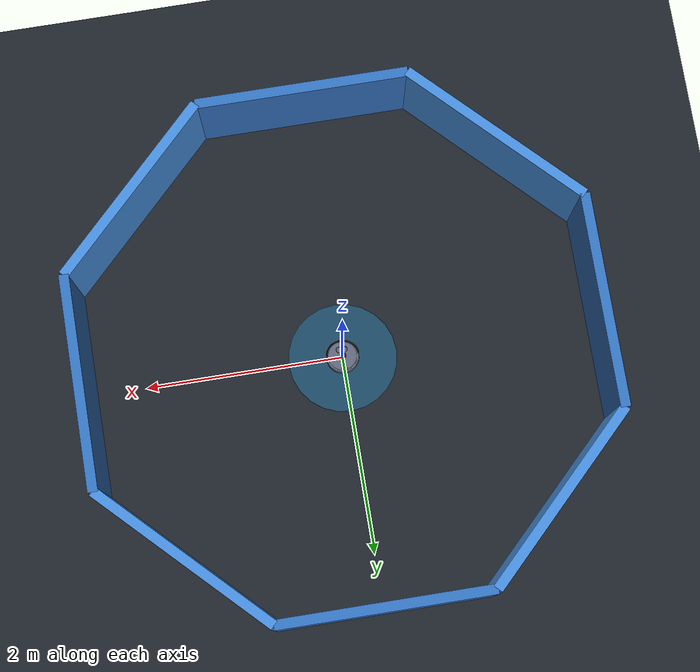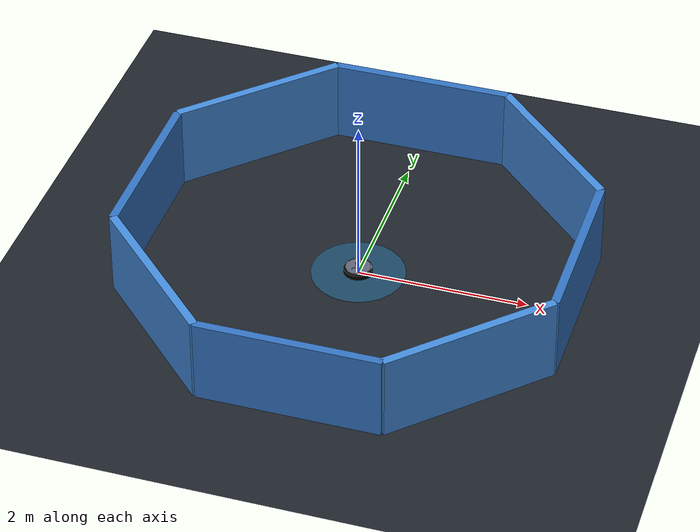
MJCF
<mujoco model="turtlebot4_octagon">

    <compiler angle="radian"/>
    <option gravity="0 0 -9.81"/>

    <!--
        turtlebot4.xml의 최상위 로봇 body가 pos="0 0 ..."이면
        TurtleBot4가 옥타곤 정중앙에서 시작합니다.
    -->
    <include file="turtlebot4.xml"/>

    <worldbody>

        <!-- 8 m x 8 m floor -->
        <geom name="floor"
              type="plane"
              size="4 4 0.1"
              rgba="0.12 0.14 0.17 1"
              friction="1.0 0.005 0.0001"/>

        <!-- Center marker: visual only, no collision -->
        <geom name="start_marker"
              type="cylinder"
              pos="0 0 0.006"
              size="0.55 0.005"
              rgba="0.12 0.65 0.95 0.30"
              contype="0"
              conaffinity="0"/>

        <!-- Horizontal walls -->
        <geom name="wall_north" type="box"
              pos="0 2.55 0.5" size="1.06 0.05 0.5"
              rgba="0.20 0.45 0.75 1"/>
        <geom name="wall_south" type="box"
              pos="0 -2.55 0.5" size="1.06 0.05 0.5"
              rgba="0.20 0.45 0.75 1"/>

        <!-- Vertical walls -->
        <geom name="wall_east" type="box"
              pos="2.55 0 0.5" size="0.05 1.06 0.5"
              rgba="0.20 0.45 0.75 1"/>
        <geom name="wall_west" type="box"
              pos="-2.55 0 0.5" size="0.05 1.06 0.5"
              rgba="0.20 0.45 0.75 1"/>

        <!-- 45-degree diagonal walls -->
        <geom name="wall_north_east" type="box"
              pos="1.803 1.803 0.5" size="1.06 0.05 0.5"
              euler="0 0 -0.7853981634"
              rgba="0.27 0.55 0.86 1"/>
        <geom name="wall_south_east" type="box"
              pos="1.803 -1.803 0.5" size="1.06 0.05 0.5"
              euler="0 0 0.7853981634"
              rgba="0.27 0.55 0.86 1"/>
        <geom name="wall_south_west" type="box"
              pos="-1.803 -1.803 0.5" size="1.06 0.05 0.5"
              euler="0 0 -0.7853981634"
              rgba="0.27 0.55 0.86 1"/>
        <geom name="wall_north_west" type="box"
              pos="-1.803 1.803 0.5" size="1.06 0.05 0.5"
              euler="0 0 0.7853981634"
              rgba="0.27 0.55 0.86 1"/>

    </worldbody>

</mujoco>

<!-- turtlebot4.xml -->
<mujoco model="turtlebot4">
  <compiler angle="radian" coordinate="local" meshdir="./assets/meshes" autolimits="true"/>
  <size nstack="300000" nuser_geom="1"/>
  <option gravity="0 0 -9.81" timestep="0.002"/>

  <asset>
    <material name="metal" rgba=".9 .95 .95 1"/>
    <material name="black" rgba="0 0 0 1"/>
    <material name="white" rgba="1 1 1 1"/>
    <material name="gray" rgba="0.371705 0.392426 0.474270 1"/>
    <mesh file="body_visual_processed.stl" scale="0.1 0.1 0.1"/>
    <mesh file="bumper_visual.obj" scale="0.001 0.001 0.001"/>
    <mesh file="top_reduced.stl" scale="0.001 0.001 0.001"/>
    <mesh file="weight_block.stl" scale="0.001 0.001 0.001"/>
    <mesh file="wheel.stl" scale="0.001 0.001 0.001"/>
  </asset>

  <worldbody>
    <body name="base" pos="0 0 0.0392">
      <freejoint name="floating_base_joint"/>

      <!-- Robot geoms use group 1. The custom LiDAR ray caster includes
           group 0 only, preventing self-detection without changing collision. -->
      <geom type="mesh" mesh="body_visual_processed" material="gray" mass="0.269" group="1"/>

      <site name="base_frame" pos="0 0 0" quat="1 0 0 0" size="0.003"/>
      <site name="imu" pos="0.051 -0.035 0.0293"
            quat="1 0 0 0" size="0.003"/>

      <body name="bumper" pos="0 0 0" axisangle="0 0 1 4.71239">
        <geom type="mesh" mesh="bumper_visual" material="black" mass="0.1" group="1"/>
      </body>

      <body name="wheel_l" pos="0.11755 0.002 -0.0032">
        <geom type="mesh" mesh="wheel" group="1"/>
        <joint name="left" damping=".03" actuatorfrcrange="-.4 .4"
               pos="0 0 0" axis="1 0 0"/>
      </body>

      <body name="wheel_r" pos="-0.117 0.002 -0.0032">
        <geom type="mesh" mesh="wheel" group="1"/>
        <joint name="right" damping=".03" actuatorfrcrange="-.4 .4"
               pos="0 0 0" axis="1 0 0"/>
      </body>

      <body name="wheel_f" pos="0 -0.125 -0.026">
        <geom type="sphere" size="0.013 0.013" group="1"/>
        <joint type="ball"/>
      </body>

      <!-- Fixed 2D LiDAR frame. A complete 360-degree scan is generated
           by t2DLiDARSensor with mj_multiRay at one simulation timestamp. -->
      <body name="lidar" pos="0 0 0.08">
        <geom name="lidar_head_geom" type="cylinder" size="0.035 0.015"
              rgba="0.1 0.1 0.1 1" mass="0.01" group="1"/>
        <site name="laser_site" pos="0 0 0" quat="1 0 0 0"
              size="0.003" rgba="0 1 0 0.5"/>
      </body>
    </body>
  </worldbody>

  <tendon>
    <fixed name="forward">
      <joint joint="left" coef=".83"/>
      <joint joint="right" coef=".83"/>
    </fixed>
    <fixed name="turn">
      <joint joint="left" coef="-.1"/>
      <joint joint="right" coef=".1"/>
    </fixed>
  </tendon>

  <actuator>
    <motor name="forward" tendon="forward" ctrlrange="-0.5 0.5"/>
    <motor name="turn" tendon="turn" ctrlrange="-2 2"/>
  </actuator>

  <sensor>
    <!-- IMU -->
    <framequat name="imu_quat" objtype="site" objname="imu"/>
    <gyro name="imu_ang" site="imu"/>
    <accelerometer name="imu_acc" site="imu"/>

    <!-- Base pose and velocity for odometry. DSS keeps MuJoCo coordinates;
         dss_ros2_bridge converts them to ROS REP-103. -->
    <framepos name="base_pos" objtype="site" objname="base_frame"/>
    <framequat name="base_quat" objtype="site" objname="base_frame"/>
    <velocimeter name="base_linvel" site="base_frame"/>
    <gyro name="base_angvel" site="base_frame"/>

    <!-- Wheel joint states -->
    <jointpos name="left_pos" joint="left"/>
    <jointvel name="left_vel" joint="left"/>
    <jointpos name="right_pos" joint="right"/>
    <jointvel name="right_vel" joint="right"/>
  </sensor>
</mujoco>
